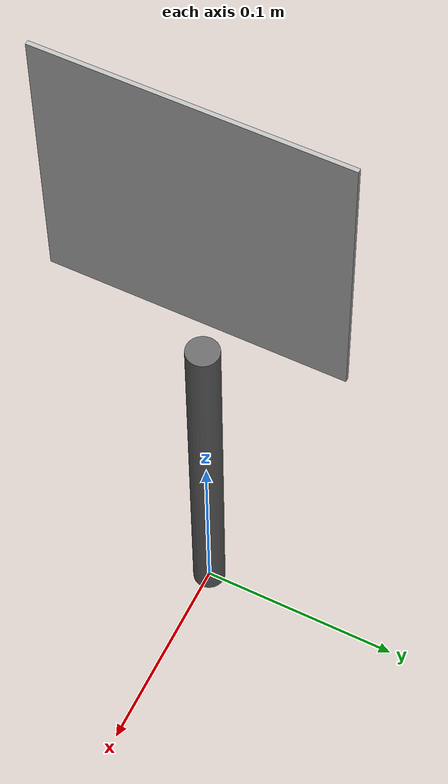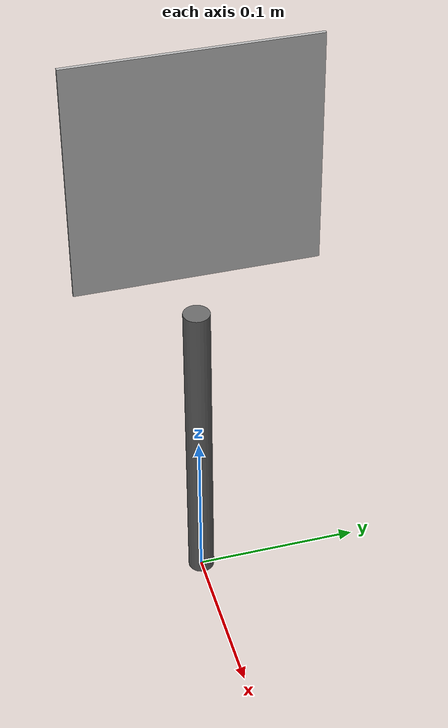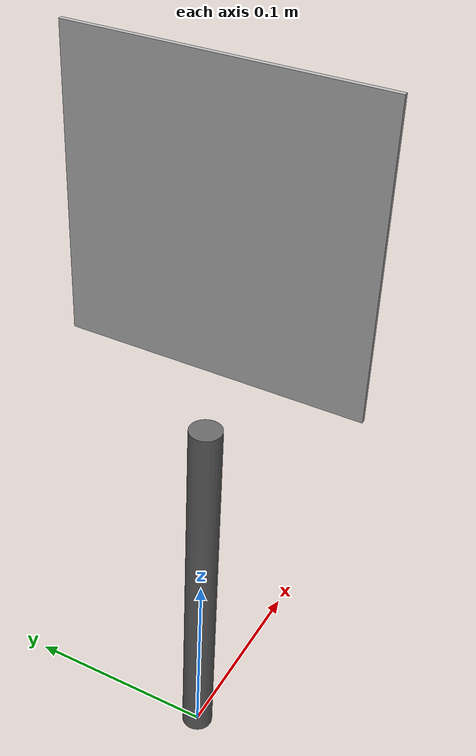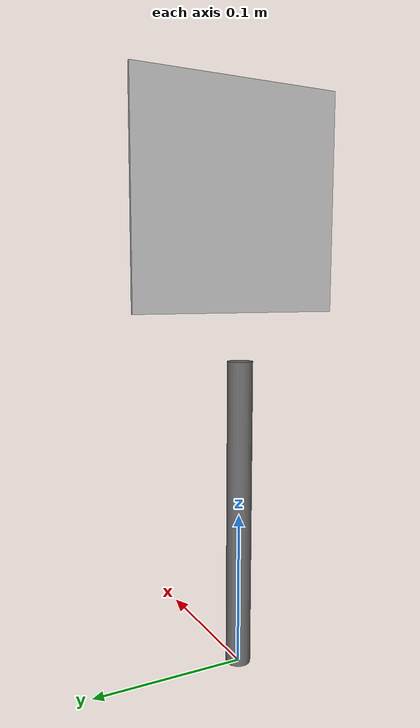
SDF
<?xml version="1.0"?>
<sdf version="1.7">
  <model name="aruco_marker_3">
    <static>true</static>
    <link name="link">
      <!-- post: stops POST_GAP below the board's bottom edge, see comment above -->
      <visual name="post">
        <pose>0 0 0.100 0 0 0</pose>
        <geometry><cylinder><radius>0.008</radius><length>0.200</length></cylinder></geometry>
        <material><ambient>0.3 0.3 0.3 1</ambient><diffuse>0.4 0.4 0.4 1</diffuse></material>
      </visual>
      <!-- printed sheet; the texture faces +x -->
      <visual name="board">
        <pose>0.004 0 0.300 0 0 0</pose>
        <geometry><box><size>0.002 0.140 0.140</size></box></geometry>
        <material>
          <script>
            <uri>model://aruco_marker_3/materials/scripts</uri>
            <uri>model://aruco_marker_3/materials/textures</uri>
            <name>Aruco/Marker3</name>
          </script>
        </material>
      </visual>
      <collision name="collision">
        <pose>0 0 0.150 0 0 0</pose>
        <geometry><box><size>0.02 0.140 0.300</size></box></geometry>
      </collision>
    </link>
  </model>
</sdf>
